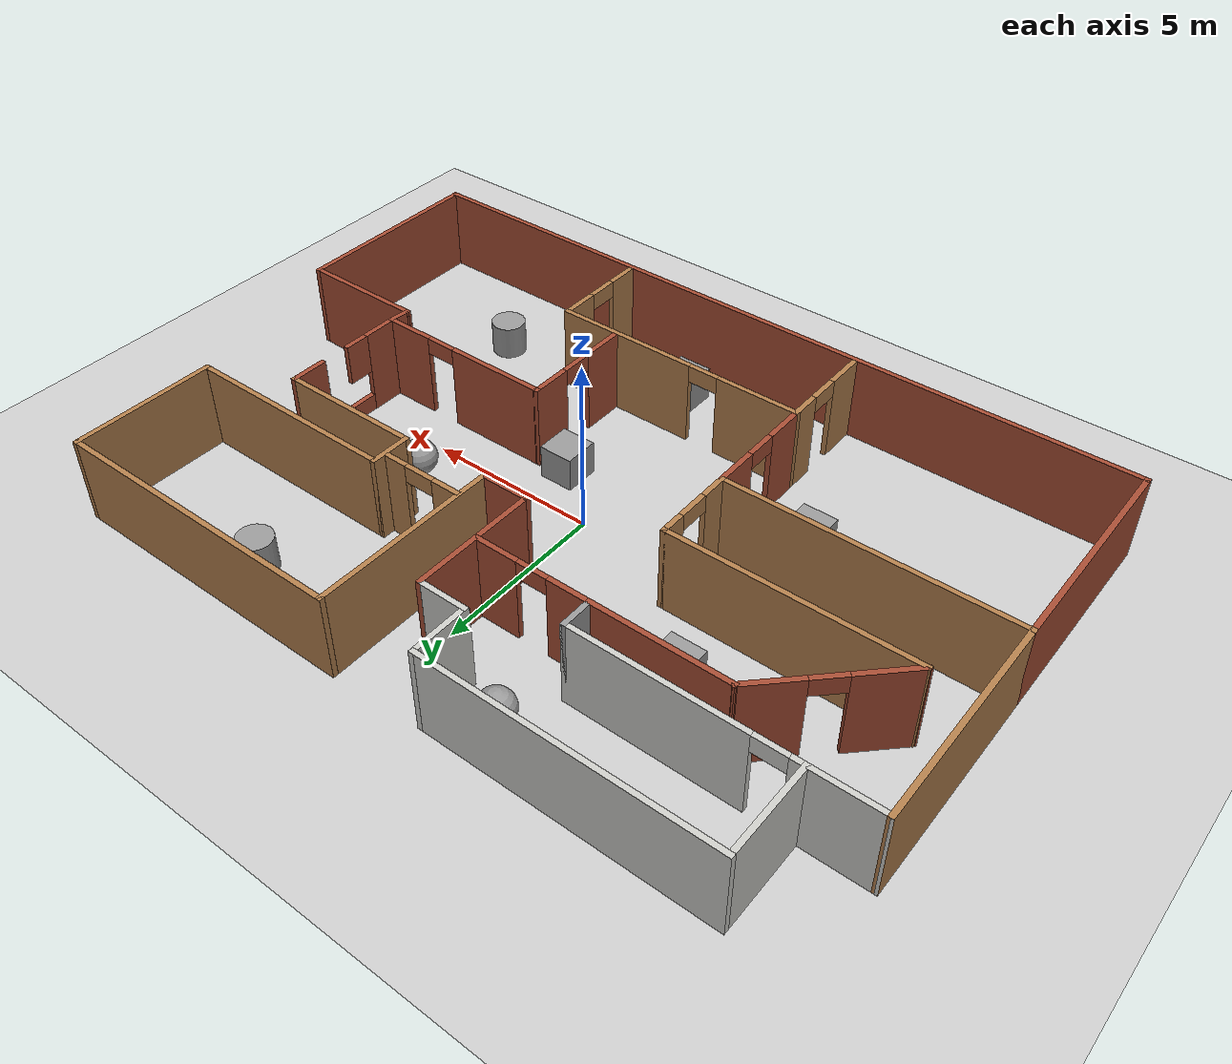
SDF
<sdf version="1.7">
 <world name="default">
  <model name="ground_plane">
   <static>1</static>
   <link name="link">
    <collision name="collision">
     <geometry><plane><normal>0 0 1</normal><size>100 100</size></plane></geometry>
     <surface><friction><ode><mu>100</mu><mu2>50</mu2></ode></friction></surface>
    </collision>
    <visual name="visual">
     <cast_shadows>0</cast_shadows>
     <geometry><plane><normal>0 0 1</normal><size>100 100</size></plane></geometry>
     <material>
      <script><uri>file://media/materials/scripts/gazebo.material</uri><name>Gazebo/Grey</name></script>
     </material>
    </visual>
   </link>
  </model>
  <gravity>0 0 -9.8</gravity>
  <magnetic_field>6e-06 2.3e-05 -4.2e-05</magnetic_field>
  <atmosphere type="adiabatic"/>
  <physics type="ode">
   <max_step_size>0.001</max_step_size>
   <real_time_factor>1</real_time_factor>
   <real_time_update_rate>1000</real_time_update_rate>
  </physics>
  <scene><ambient>0.4 0.4 0.4 1</ambient><background>0.7 0.7 0.7 1</background><shadows>1</shadows></scene>
  <audio><device>default</device></audio>
  <spherical_coordinates>
   <surface_model>EARTH_WGS84</surface_model>
   <latitude_deg>0</latitude_deg>
   <longitude_deg>0</longitude_deg>
   <elevation>0</elevation>
   <heading_deg>0</heading_deg>
  </spherical_coordinates>
  <model name="my_world">
   <pose>0.001955 -0.001512 0 0 -0 0</pose>
   <link name="Wall_0">
    <pose>5.19915 -1.20043 0 0 -0 0</pose>
    <visual name="Wall_0_Visual_0">
     <pose>-1.21752 0 1.25 0 -0 0</pose>
     <geometry><box><size>3.06495 0.15 2.5</size></box></geometry>
     <material>
      <script><uri>file://media/materials/scripts/gazebo.material</uri><name>Gazebo/Bricks</name></script>
      <ambient>1 1 1 1</ambient>
     </material>
     <meta><layer>0</layer></meta>
    </visual>
    <collision name="Wall_0_Collision_0">
     <geometry><box><size>3.06495 0.15 2.5</size></box></geometry>
     <pose>-1.21752 0 1.25 0 -0 0</pose>
    </collision>
    <visual name="Wall_0_Visual_1">
     <pose>1.98248 0 1.25 0 -0 0</pose>
     <geometry><box><size>1.53505 0.15 2.5</size></box></geometry>
     <material>
      <script><uri>file://media/materials/scripts/gazebo.material</uri><name>Gazebo/Bricks</name></script>
      <ambient>1 1 1 1</ambient>
     </material>
     <meta><layer>0</layer></meta>
    </visual>
    <collision name="Wall_0_Collision_1">
     <geometry><box><size>1.53505 0.15 2.5</size></box></geometry>
     <pose>1.98248 0 1.25 0 -0 0</pose>
    </collision>
    <visual name="Wall_0_Visual_2">
     <pose>0.764952 0 2.25 0 -0 0</pose>
     <geometry><box><size>0.9 0.15 0.5</size></box></geometry>
     <material>
      <script><uri>file://media/materials/scripts/gazebo.material</uri><name>Gazebo/Bricks</name></script>
      <ambient>1 1 1 1</ambient>
     </material>
     <meta><layer>0</layer></meta>
    </visual>
    <collision name="Wall_0_Collision_2">
     <geometry><box><size>0.9 0.15 0.5</size></box></geometry>
     <pose>0.764952 0 2.25 0 -0 0</pose>
    </collision>
   </link>
   <link name="Wall_1">
    <pose>7.87416 0.599569 0 0 -0 1.5708</pose>
    <visual name="Wall_1_Visual_0">
     <pose>-1.32441 0 1.25 0 -0 0</pose>
     <geometry><box><size>1.10117 0.15 2.5</size></box></geometry>
     <material>
      <script><uri>file://media/materials/scripts/gazebo.material</uri><name>Gazebo/Bricks</name></script>
      <ambient>1 1 1 1</ambient>
     </material>
     <meta><layer>0</layer></meta>
    </visual>
    <collision name="Wall_1_Collision_0">
     <geometry><box><size>1.10117 0.15 2.5</size></box></geometry>
     <pose>-1.32441 0 1.25 0 -0 0</pose>
    </collision>
    <visual name="Wall_1_Visual_1">
     <pose>0.550585 0 0.25 0 -0 0</pose>
     <geometry><box><size>2.64883 0.15 0.5</size></box></geometry>
     <material>
      <script><uri>file://media/materials/scripts/gazebo.material</uri><name>Gazebo/Bricks</name></script>
      <ambient>1 1 1 1</ambient>
     </material>
     <meta><layer>0</layer></meta>
    </visual>
    <collision name="Wall_1_Collision_1">
     <geometry><box><size>2.64883 0.15 0.5</size></box></geometry>
     <pose>0.550585 0 0.25 0 -0 0</pose>
    </collision>
    <visual name="Wall_1_Visual_2">
     <pose>1.32206 0 1.5 0 -0 0</pose>
     <geometry><box><size>1.10588 0.15 2</size></box></geometry>
     <material>
      <script><uri>file://media/materials/scripts/gazebo.material</uri><name>Gazebo/Bricks</name></script>
      <ambient>1 1 1 1</ambient>
     </material>
     <meta><layer>0</layer></meta>
    </visual>
    <collision name="Wall_1_Collision_2">
     <geometry><box><size>1.10588 0.15 2</size></box></geometry>
     <pose>1.32206 0 1.5 0 -0 0</pose>
    </collision>
    <visual name="Wall_1_Visual_3">
     <pose>-0.402355 0 1.9 0 -0 0</pose>
     <geometry><box><size>0.742949 0.15 1.2</size></box></geometry>
     <material>
      <script><uri>file://media/materials/scripts/gazebo.material</uri><name>Gazebo/Bricks</name></script>
      <ambient>1 1 1 1</ambient>
     </material>
     <meta><layer>0</layer></meta>
    </visual>
    <collision name="Wall_1_Collision_3">
     <geometry><box><size>0.742949 0.15 1.2</size></box></geometry>
     <pose>-0.402355 0 1.9 0 -0 0</pose>
    </collision>
   </link>
   <link name="Wall_10">
    <collision name="Wall_10_Collision">
     <geometry><box><size>1.5 0.15 2.5</size></box></geometry>
     <pose>0 0 1.25 0 -0 0</pose>
    </collision>
    <visual name="Wall_10_Visual">
     <pose>0 0 1.25 0 -0 0</pose>
     <geometry><box><size>1.5 0.15 2.5</size></box></geometry>
     <material>
      <script><uri>file://media/materials/scripts/gazebo.material</uri><name>Gazebo/CeilingTiled</name></script>
      <ambient>1 1 1 1</ambient>
     </material>
     <meta><layer>0</layer></meta>
    </visual>
    <pose>-0.750846 5.84957 0 0 -0 3.14159</pose>
   </link>
   <link name="Wall_11">
    <collision name="Wall_11_Collision">
     <geometry><box><size>1.75 0.15 2.5</size></box></geometry>
     <pose>0 0 1.25 0 -0 0</pose>
    </collision>
    <visual name="Wall_11_Visual">
     <pose>0 0 1.25 0 -0 0</pose>
     <geometry><box><size>1.75 0.15 2.5</size></box></geometry>
     <material>
      <script><uri>file://media/materials/scripts/gazebo.material</uri><name>Gazebo/CeilingTiled</name></script>
      <ambient>1 1 1 1</ambient>
     </material>
     <meta><layer>0</layer></meta>
    </visual>
    <pose>-1.42585 6.64957 0 0 -0 1.5708</pose>
   </link>
   <link name="Wall_12">
    <collision name="Wall_12_Collision">
     <geometry><box><size>8.25 0.15 2.5</size></box></geometry>
     <pose>0 0 1.25 0 -0 0</pose>
    </collision>
    <visual name="Wall_12_Visual">
     <pose>0 0 1.25 0 -0 0</pose>
     <geometry><box><size>8.25 0.15 2.5</size></box></geometry>
     <material>
      <script><uri>file://media/materials/scripts/gazebo.material</uri><name>Gazebo/CeilingTiled</name></script>
      <ambient>1 1 1 1</ambient>
     </material>
     <meta><layer>0</layer></meta>
    </visual>
    <pose>-5.47585 7.44957 0 0 -0 3.14159</pose>
   </link>
   <link name="Wall_13">
    <collision name="Wall_13_Collision">
     <geometry><box><size>2.75 0.15 2.5</size></box></geometry>
     <pose>0 0 1.25 0 -0 0</pose>
    </collision>
    <visual name="Wall_13_Visual">
     <pose>0 0 1.25 0 -0 0</pose>
     <geometry><box><size>2.75 0.15 2.5</size></box></geometry>
     <material>
      <script><uri>file://media/materials/scripts/gazebo.material</uri><name>Gazebo/CeilingTiled</name></script>
      <ambient>1 1 1 1</ambient>
     </material>
     <meta><layer>0</layer></meta>
    </visual>
    <pose>-9.52585 6.14957 0 0 -0 -1.5708</pose>
   </link>
   <link name="Wall_14">
    <pose>-6.47584 4.84957 0 0 -0 0</pose>
    <visual name="Wall_14_Visual_0">
     <pose>-2.90772 0 1.25 0 -0 0</pose>
     <geometry><box><size>0.434569 0.15 2.5</size></box></geometry>
     <material>
      <script><uri>file://media/materials/scripts/gazebo.material</uri><name>Gazebo/CeilingTiled</name></script>
      <ambient>1 1 1 1</ambient>
     </material>
     <meta><layer>0</layer></meta>
    </visual>
    <collision name="Wall_14_Collision_0">
     <geometry><box><size>0.434569 0.15 2.5</size></box></geometry>
     <pose>-2.90772 0 1.25 0 -0 0</pose>
    </collision>
    <visual name="Wall_14_Visual_1">
     <pose>0.667285 0 1.25 0 -0 0</pose>
     <geometry><box><size>4.91543 0.15 2.5</size></box></geometry>
     <material>
      <script><uri>file://media/materials/scripts/gazebo.material</uri><name>Gazebo/CeilingTiled</name></script>
      <ambient>1 1 1 1</ambient>
     </material>
     <meta><layer>0</layer></meta>
    </visual>
    <collision name="Wall_14_Collision_1">
     <geometry><box><size>4.91543 0.15 2.5</size></box></geometry>
     <pose>0.667285 0 1.25 0 -0 0</pose>
    </collision>
    <visual name="Wall_14_Visual_2">
     <pose>-2.24043 0 2.25 0 -0 0</pose>
     <geometry><box><size>0.9 0.15 0.5</size></box></geometry>
     <material>
      <script><uri>file://media/materials/scripts/gazebo.material</uri><name>Gazebo/CeilingTiled</name></script>
      <ambient>1 1 1 1</ambient>
     </material>
     <meta><layer>0</layer></meta>
    </visual>
    <collision name="Wall_14_Collision_2">
     <geometry><box><size>0.9 0.15 0.5</size></box></geometry>
     <pose>-2.24043 0 2.25 0 -0 0</pose>
    </collision>
   </link>
   <link name="Wall_15">
    <collision name="Wall_15_Collision">
     <geometry><box><size>1 0.15 2.5</size></box></geometry>
     <pose>0 0 1.25 0 -0 0</pose>
    </collision>
    <visual name="Wall_15_Visual">
     <pose>0 0 1.25 0 -0 0</pose>
     <geometry><box><size>1 0.15 2.5</size></box></geometry>
     <material>
      <script><uri>file://media/materials/scripts/gazebo.material</uri><name>Gazebo/Grey</name></script>
      <ambient>1 1 1 1</ambient>
     </material>
     <meta><layer>0</layer></meta>
    </visual>
    <pose>-3.42585 4.42457 0 0 -0 -1.5708</pose>
   </link>
   <link name="Wall_16">
    <collision name="Wall_16_Collision">
     <geometry><box><size>4 0.15 2.5</size></box></geometry>
     <pose>0 0 1.25 0 -0 0</pose>
    </collision>
    <visual name="Wall_16_Visual">
     <pose>0 0 1.25 0 -0 0</pose>
     <geometry><box><size>4 0.15 2.5</size></box></geometry>
     <material>
      <script><uri>file://media/materials/scripts/gazebo.material</uri><name>Gazebo/Bricks</name></script>
      <ambient>1 1 1 1</ambient>
     </material>
     <meta><layer>0</layer></meta>
    </visual>
    <pose>-5.35085 3.99957 0 0 -0 3.14159</pose>
   </link>
   <link name="Wall_17">
    <pose>-8.72541 2.55 0 0 -0 -2.35619</pose>
    <visual name="Wall_17_Visual_0">
     <pose>-1.31893 0 1.25 0 -0 0</pose>
     <geometry><box><size>1.61213 0.15 2.5</size></box></geometry>
     <material>
      <script><uri>file://media/materials/scripts/gazebo.material</uri><name>Gazebo/Bricks</name></script>
      <ambient>1 1 1 1</ambient>
     </material>
     <meta><layer>0</layer></meta>
    </visual>
    <collision name="Wall_17_Collision_0">
     <geometry><box><size>1.61213 0.15 2.5</size></box></geometry>
     <pose>-1.31893 0 1.25 0 -0 0</pose>
    </collision>
    <visual name="Wall_17_Visual_1">
     <pose>1.25606 0 1.25 0 -0 0</pose>
     <geometry><box><size>1.73787 0.15 2.5</size></box></geometry>
     <material>
      <script><uri>file://media/materials/scripts/gazebo.material</uri><name>Gazebo/Bricks</name></script>
      <ambient>1 1 1 1</ambient>
     </material>
     <meta><layer>0</layer></meta>
    </visual>
    <collision name="Wall_17_Collision_1">
     <geometry><box><size>1.73787 0.15 2.5</size></box></geometry>
     <pose>1.25606 0 1.25 0 -0 0</pose>
    </collision>
    <visual name="Wall_17_Visual_2">
     <pose>-0.06287 0 2.25 0 -0 0</pose>
     <geometry><box><size>0.9 0.15 0.5</size></box></geometry>
     <material>
      <script><uri>file://media/materials/scripts/gazebo.material</uri><name>Gazebo/Bricks</name></script>
      <ambient>1 1 1 1</ambient>
     </material>
     <meta><layer>0</layer></meta>
    </visual>
    <collision name="Wall_17_Collision_2">
     <geometry><box><size>0.9 0.15 0.5</size></box></geometry>
     <pose>-0.06287 0 2.25 0 -0 0</pose>
    </collision>
   </link>
   <link name="Wall_18">
    <collision name="Wall_18_Collision">
     <geometry><box><size>7 0.15 2.5</size></box></geometry>
     <pose>0 0 1.25 0 -0 0</pose>
    </collision>
    <visual name="Wall_18_Visual">
     <pose>0 0 1.25 0 -0 0</pose>
     <geometry><box><size>7 0.15 2.5</size></box></geometry>
     <material>
      <script><uri>file://media/materials/scripts/gazebo.material</uri><name>Gazebo/Wood</name></script>
      <ambient>1 1 1 1</ambient>
     </material>
     <meta><layer>0</layer></meta>
    </visual>
    <pose>-6.74998 1.10043 0 0 -0 0</pose>
   </link>
   <link name="Wall_19">
    <pose>-3.32498 -0.074569 0 0 -0 -1.5708</pose>
    <visual name="Wall_19_Visual_0">
     <pose>-0.876329 0 1.25 0 -0 0</pose>
     <geometry><box><size>0.747341 0.15 2.5</size></box></geometry>
     <material>
      <script><uri>file://media/materials/scripts/gazebo.material</uri><name>Gazebo/Wood</name></script>
      <ambient>1 1 1 1</ambient>
     </material>
     <meta><layer>0</layer></meta>
    </visual>
    <collision name="Wall_19_Collision_0">
     <geometry><box><size>0.747341 0.15 2.5</size></box></geometry>
     <pose>-0.876329 0 1.25 0 -0 0</pose>
    </collision>
    <visual name="Wall_19_Visual_1">
     <pose>0.823671 0 1.25 0 -0 0</pose>
     <geometry><box><size>0.852659 0.15 2.5</size></box></geometry>
     <material>
      <script><uri>file://media/materials/scripts/gazebo.material</uri><name>Gazebo/Wood</name></script>
      <ambient>1 1 1 1</ambient>
     </material>
     <meta><layer>0</layer></meta>
    </visual>
    <collision name="Wall_19_Collision_1">
     <geometry><box><size>0.852659 0.15 2.5</size></box></geometry>
     <pose>0.823671 0 1.25 0 -0 0</pose>
    </collision>
    <visual name="Wall_19_Visual_2">
     <pose>-0.052659 0 2.25 0 -0 0</pose>
     <geometry><box><size>0.9 0.15 0.5</size></box></geometry>
     <material>
      <script><uri>file://media/materials/scripts/gazebo.material</uri><name>Gazebo/Wood</name></script>
      <ambient>1 1 1 1</ambient>
     </material>
     <meta><layer>0</layer></meta>
    </visual>
    <collision name="Wall_19_Collision_2">
     <geometry><box><size>0.9 0.15 0.5</size></box></geometry>
     <pose>-0.052659 0 2.25 0 -0 0</pose>
    </collision>
   </link>
   <link name="Wall_2">
    <collision name="Wall_2_Collision">
     <geometry><box><size>4.25 0.15 2.5</size></box></geometry>
     <pose>0 0 1.25 0 -0 0</pose>
    </collision>
    <visual name="Wall_2_Visual">
     <pose>0 0 1.25 0 -0 0</pose>
     <geometry><box><size>4.25 0.15 2.5</size></box></geometry>
     <material>
      <script><uri>file://media/materials/scripts/gazebo.material</uri><name>Gazebo/Wood</name></script>
      <ambient>1 1 1 1</ambient>
     </material>
     <meta><layer>0</layer></meta>
    </visual>
    <pose>5.82415 2.39957 0 0 -0 3.14159</pose>
   </link>
   <link name="Wall_20">
    <collision name="Wall_20_Collision">
     <geometry><box><size>8.25 0.15 2.5</size></box></geometry>
     <pose>0 0 1.25 0 -0 0</pose>
    </collision>
    <visual name="Wall_20_Visual">
     <pose>0 0 1.25 0 -0 0</pose>
     <geometry><box><size>8.25 0.15 2.5</size></box></geometry>
     <material>
      <script><uri>file://media/materials/scripts/gazebo.material</uri><name>Gazebo/Wood</name></script>
      <ambient>1 1 1 1</ambient>
     </material>
     <meta><layer>0</layer></meta>
    </visual>
    <pose>-7.37498 -1.24957 0 0 -0 3.14159</pose>
   </link>
   <link name="Wall_21">
    <collision name="Wall_21_Collision">
     <geometry><box><size>6.5 0.15 2.5</size></box></geometry>
     <pose>0 0 1.25 0 -0 0</pose>
    </collision>
    <visual name="Wall_21_Visual">
     <pose>0 0 1.25 0 -0 0</pose>
     <geometry><box><size>6.5 0.15 2.5</size></box></geometry>
     <material>
      <script><uri>file://media/materials/scripts/gazebo.material</uri><name>Gazebo/Bricks</name></script>
      <ambient>1 1 1 1</ambient>
     </material>
     <meta><layer>0</layer></meta>
    </visual>
    <pose>-11.425 -4.42457 0 0 -0 -1.5708</pose>
   </link>
   <link name="Wall_22">
    <collision name="Wall_22_Collision">
     <geometry><box><size>23 0.15 2.5</size></box></geometry>
     <pose>0 0 1.25 0 -0 0</pose>
    </collision>
    <visual name="Wall_22_Visual">
     <pose>0 0 1.25 0 -0 0</pose>
     <geometry><box><size>23 0.15 2.5</size></box></geometry>
     <material>
      <script><uri>file://media/materials/scripts/gazebo.material</uri><name>Gazebo/Bricks</name></script>
      <ambient>1 1 1 1</ambient>
     </material>
     <meta><layer>0</layer></meta>
    </visual>
    <pose>1.7e-05 -7.59957 0 0 -0 0</pose>
   </link>
   <link name="Wall_23">
    <collision name="Wall_23_Collision">
     <geometry><box><size>6 0.15 2.5</size></box></geometry>
     <pose>0 0 1.25 0 -0 0</pose>
    </collision>
    <visual name="Wall_23_Visual">
     <pose>0 0 1.25 0 -0 0</pose>
     <geometry><box><size>6 0.15 2.5</size></box></geometry>
     <material>
      <script><uri>file://media/materials/scripts/gazebo.material</uri><name>Gazebo/Bricks</name></script>
      <ambient>1 1 1 1</ambient>
     </material>
     <meta><layer>0</layer></meta>
    </visual>
    <pose>11.425 -4.67457 0 0 -0 1.5708</pose>
   </link>
   <link name="Wall_24">
    <collision name="Wall_24_Collision">
     <geometry><box><size>3.75 0.15 2.5</size></box></geometry>
     <pose>0 0 1.25 0 -0 0</pose>
    </collision>
    <visual name="Wall_24_Visual">
     <pose>0 0 1.25 0 -0 0</pose>
     <geometry><box><size>3.75 0.15 2.5</size></box></geometry>
     <material>
      <script><uri>file://media/materials/scripts/gazebo.material</uri><name>Gazebo/Bricks</name></script>
      <ambient>1 1 1 1</ambient>
     </material>
     <meta><layer>0</layer></meta>
    </visual>
    <pose>9.62502 -1.74957 0 0 -0 3.14159</pose>
   </link>
   <link name="Wall_25">
    <collision name="Wall_25_Collision">
     <geometry><box><size>0.701332 0.15 2.5</size></box></geometry>
     <pose>0 0 1.25 0 -0 0</pose>
    </collision>
    <visual name="Wall_25_Visual">
     <pose>0 0 1.25 0 -0 0</pose>
     <geometry><box><size>0.701332 0.15 2.5</size></box></geometry>
     <material>
      <script><uri>file://media/materials/scripts/gazebo.material</uri><name>Gazebo/Bricks</name></script>
      <ambient>1 1 1 1</ambient>
     </material>
     <meta><layer>0</layer></meta>
    </visual>
    <pose>7.84959 -1.475 0 0 -0 1.48155</pose>
   </link>
   <link name="Wall_27">
    <pose>-3.32498 -2.92457 0 0 -0 -1.5708</pose>
    <visual name="Wall_27_Visual_0">
     <pose>-1.09875 0 1.25 0 -0 0</pose>
     <geometry><box><size>1.30251 0.15 2.5</size></box></geometry>
     <material>
      <script><uri>file://media/materials/scripts/gazebo.material</uri><name>Gazebo/Bricks</name></script>
      <ambient>1 1 1 1</ambient>
     </material>
     <meta><layer>0</layer></meta>
    </visual>
    <collision name="Wall_27_Collision_0">
     <geometry><box><size>1.30251 0.15 2.5</size></box></geometry>
     <pose>-1.09875 0 1.25 0 -0 0</pose>
    </collision>
    <visual name="Wall_27_Visual_1">
     <pose>1.10125 0 1.25 0 -0 0</pose>
     <geometry><box><size>1.29749 0.15 2.5</size></box></geometry>
     <material>
      <script><uri>file://media/materials/scripts/gazebo.material</uri><name>Gazebo/Bricks</name></script>
      <ambient>1 1 1 1</ambient>
     </material>
     <meta><layer>0</layer></meta>
    </visual>
    <collision name="Wall_27_Collision_1">
     <geometry><box><size>1.29749 0.15 2.5</size></box></geometry>
     <pose>1.10125 0 1.25 0 -0 0</pose>
    </collision>
    <visual name="Wall_27_Visual_2">
     <pose>0.002507 0 2.25 0 -0 0</pose>
     <geometry><box><size>0.9 0.15 0.5</size></box></geometry>
     <material>
      <script><uri>file://media/materials/scripts/gazebo.material</uri><name>Gazebo/Bricks</name></script>
      <ambient>1 1 1 1</ambient>
     </material>
     <meta><layer>0</layer></meta>
    </visual>
    <collision name="Wall_27_Collision_2">
     <geometry><box><size>0.9 0.15 0.5</size></box></geometry>
     <pose>0.002507 0 2.25 0 -0 0</pose>
    </collision>
   </link>
   <link name="Wall_28">
    <pose>0.475017 -4.59957 0 0 -0 0</pose>
    <visual name="Wall_28_Visual_0">
     <pose>-2.61508 0 1.25 0 -0 0</pose>
     <geometry><box><size>2.51985 0.15 2.5</size></box></geometry>
     <material>
      <script><uri>file://media/materials/scripts/gazebo.material</uri><name>Gazebo/Wood</name></script>
      <ambient>1 1 1 1</ambient>
     </material>
     <meta><layer>0</layer></meta>
    </visual>
    <collision name="Wall_28_Collision_0">
     <geometry><box><size>2.51985 0.15 2.5</size></box></geometry>
     <pose>-2.61508 0 1.25 0 -0 0</pose>
    </collision>
    <visual name="Wall_28_Visual_1">
     <pose>1.70992 0 1.25 0 -0 0</pose>
     <geometry><box><size>4.33015 0.15 2.5</size></box></geometry>
     <material>
      <script><uri>file://media/materials/scripts/gazebo.material</uri><name>Gazebo/Wood</name></script>
      <ambient>1 1 1 1</ambient>
     </material>
     <meta><layer>0</layer></meta>
    </visual>
    <collision name="Wall_28_Collision_1">
     <geometry><box><size>4.33015 0.15 2.5</size></box></geometry>
     <pose>1.70992 0 1.25 0 -0 0</pose>
    </collision>
    <visual name="Wall_28_Visual_2">
     <pose>-0.905153 0 2.25 0 -0 0</pose>
     <geometry><box><size>0.9 0.15 0.5</size></box></geometry>
     <material>
      <script><uri>file://media/materials/scripts/gazebo.material</uri><name>Gazebo/Wood</name></script>
      <ambient>1 1 1 1</ambient>
     </material>
     <meta><layer>0</layer></meta>
    </visual>
    <collision name="Wall_28_Collision_2">
     <geometry><box><size>0.9 0.15 0.5</size></box></geometry>
     <pose>-0.905153 0 2.25 0 -0 0</pose>
    </collision>
   </link>
   <link name="Wall_29">
    <pose>4.27502 -6.02457 0 0 -0 -1.5708</pose>
    <visual name="Wall_29_Visual_0">
     <pose>-0.921624 0 1.25 0 -0 0</pose>
     <geometry><box><size>1.15675 0.15 2.5</size></box></geometry>
     <material>
      <script><uri>file://media/materials/scripts/gazebo.material</uri><name>Gazebo/Wood</name></script>
      <ambient>1 1 1 1</ambient>
     </material>
     <meta><layer>0</layer></meta>
    </visual>
    <collision name="Wall_29_Collision_0">
     <geometry><box><size>1.15675 0.15 2.5</size></box></geometry>
     <pose>-0.921624 0 1.25 0 -0 0</pose>
    </collision>
    <visual name="Wall_29_Visual_1">
     <pose>1.02838 0 1.25 0 -0 0</pose>
     <geometry><box><size>0.943247 0.15 2.5</size></box></geometry>
     <material>
      <script><uri>file://media/materials/scripts/gazebo.material</uri><name>Gazebo/Wood</name></script>
      <ambient>1 1 1 1</ambient>
     </material>
     <meta><layer>0</layer></meta>
    </visual>
    <collision name="Wall_29_Collision_1">
     <geometry><box><size>0.943247 0.15 2.5</size></box></geometry>
     <pose>1.02838 0 1.25 0 -0 0</pose>
    </collision>
    <visual name="Wall_29_Visual_2">
     <pose>0.106753 0 2.25 0 -0 0</pose>
     <geometry><box><size>0.9 0.15 0.5</size></box></geometry>
     <material>
      <script><uri>file://media/materials/scripts/gazebo.material</uri><name>Gazebo/Wood</name></script>
      <ambient>1 1 1 1</ambient>
     </material>
     <meta><layer>0</layer></meta>
    </visual>
    <collision name="Wall_29_Collision_2">
     <geometry><box><size>0.9 0.15 0.5</size></box></geometry>
     <pose>0.106753 0 2.25 0 -0 0</pose>
    </collision>
   </link>
   <link name="Wall_3">
    <collision name="Wall_3_Collision">
     <geometry><box><size>1.25 0.15 2.5</size></box></geometry>
     <pose>0 0 1.25 0 -0 0</pose>
    </collision>
    <visual name="Wall_3_Visual">
     <pose>0 0 1.25 0 -0 0</pose>
     <geometry><box><size>1.25 0.15 2.5</size></box></geometry>
     <material>
      <script><uri>file://media/materials/scripts/gazebo.material</uri><name>Gazebo/Wood</name></script>
      <ambient>1 1 1 1</ambient>
     </material>
     <meta><layer>0</layer></meta>
    </visual>
    <pose>3.77415 2.94957 0 0 -0 1.5708</pose>
   </link>
   <link name="Wall_31">
    <pose>-3.32498 -6.02457 0 0 -0 -1.5708</pose>
    <visual name="Wall_31_Visual_0">
     <pose>-1.03831 0 1.25 0 -0 0</pose>
     <geometry><box><size>0.923382 0.15 2.5</size></box></geometry>
     <material>
      <script><uri>file://media/materials/scripts/gazebo.material</uri><name>Gazebo/Wood</name></script>
      <ambient>1 1 1 1</ambient>
     </material>
     <meta><layer>0</layer></meta>
    </visual>
    <collision name="Wall_31_Collision_0">
     <geometry><box><size>0.923382 0.15 2.5</size></box></geometry>
     <pose>-1.03831 0 1.25 0 -0 0</pose>
    </collision>
    <visual name="Wall_31_Visual_1">
     <pose>0.911691 0 1.25 0 -0 0</pose>
     <geometry><box><size>1.17662 0.15 2.5</size></box></geometry>
     <material>
      <script><uri>file://media/materials/scripts/gazebo.material</uri><name>Gazebo/Wood</name></script>
      <ambient>1 1 1 1</ambient>
     </material>
     <meta><layer>0</layer></meta>
    </visual>
    <collision name="Wall_31_Collision_1">
     <geometry><box><size>1.17662 0.15 2.5</size></box></geometry>
     <pose>0.911691 0 1.25 0 -0 0</pose>
    </collision>
    <visual name="Wall_31_Visual_2">
     <pose>-0.126618 0 2.25 0 -0 0</pose>
     <geometry><box><size>0.9 0.15 0.5</size></box></geometry>
     <material>
      <script><uri>file://media/materials/scripts/gazebo.material</uri><name>Gazebo/Wood</name></script>
      <ambient>1 1 1 1</ambient>
     </material>
     <meta><layer>0</layer></meta>
    </visual>
    <collision name="Wall_31_Collision_2">
     <geometry><box><size>0.9 0.15 0.5</size></box></geometry>
     <pose>-0.126618 0 2.25 0 -0 0</pose>
    </collision>
   </link>
   <link name="Wall_33">
    <pose>2.52177 3.13342 0 0 -0 0</pose>
    <visual name="Wall_33_Visual_0">
     <pose>-0.822221 0 1.25 0 -0 0</pose>
     <geometry><box><size>0.855557 0.15 2.5</size></box></geometry>
     <material>
      <script><uri>file://media/materials/scripts/gazebo.material</uri><name>Gazebo/Wood</name></script>
      <ambient>1 1 1 1</ambient>
     </material>
     <meta><layer>0</layer></meta>
    </visual>
    <collision name="Wall_33_Collision_0">
     <geometry><box><size>0.855557 0.15 2.5</size></box></geometry>
     <pose>-0.822221 0 1.25 0 -0 0</pose>
    </collision>
    <visual name="Wall_33_Visual_1">
     <pose>0.877779 0 1.25 0 -0 0</pose>
     <geometry><box><size>0.744443 0.15 2.5</size></box></geometry>
     <material>
      <script><uri>file://media/materials/scripts/gazebo.material</uri><name>Gazebo/Wood</name></script>
      <ambient>1 1 1 1</ambient>
     </material>
     <meta><layer>0</layer></meta>
    </visual>
    <collision name="Wall_33_Collision_1">
     <geometry><box><size>0.744443 0.15 2.5</size></box></geometry>
     <pose>0.877779 0 1.25 0 -0 0</pose>
    </collision>
    <visual name="Wall_33_Visual_2">
     <pose>0.055557 0 2.25 0 -0 0</pose>
     <geometry><box><size>0.9 0.15 0.5</size></box></geometry>
     <material>
      <script><uri>file://media/materials/scripts/gazebo.material</uri><name>Gazebo/Wood</name></script>
      <ambient>1 1 1 1</ambient>
     </material>
     <meta><layer>0</layer></meta>
    </visual>
    <collision name="Wall_33_Collision_2">
     <geometry><box><size>0.9 0.15 0.5</size></box></geometry>
     <pose>0.055557 0 2.25 0 -0 0</pose>
    </collision>
   </link>
   <link name="Wall_35">
    <collision name="Wall_35_Collision">
     <geometry><box><size>6.25 0.15 2.5</size></box></geometry>
     <pose>0 0 1.25 0 -0 0</pose>
    </collision>
    <visual name="Wall_35_Visual">
     <pose>0 0 1.25 0 -0 0</pose>
     <geometry><box><size>6.25 0.15 2.5</size></box></geometry>
     <material>
      <script><uri>file://media/materials/scripts/gazebo.material</uri><name>Gazebo/Wood</name></script>
      <ambient>1 1 1 1</ambient>
     </material>
     <meta><layer>0</layer></meta>
    </visual>
    <pose>-11.425 1.80043 0 0 -0 1.5708</pose>
   </link>
   <link name="Wall_36">
    <collision name="Wall_36_Collision">
     <geometry><box><size>2.04914 0.15 2.5</size></box></geometry>
     <pose>0 0 1.25 0 -0 0</pose>
    </collision>
    <visual name="Wall_36_Visual">
     <pose>0 0 1.25 0 -0 0</pose>
     <geometry><box><size>2.04914 0.15 2.5</size></box></geometry>
     <material>
      <script><uri>file://media/materials/scripts/gazebo.material</uri><name>Gazebo/CeilingTiled</name></script>
      <ambient>1 1 1 1</ambient>
     </material>
     <meta><layer>0</layer></meta>
    </visual>
    <pose>-10.4754 4.85 0 0 -0 -0.000454</pose>
   </link>
   <link name="Wall_38">
    <pose>-1.75085 3.99957 0 0 -0 0</pose>
    <visual name="Wall_38_Visual_0">
     <pose>-1.11647 0 1.25 0 -0 0</pose>
     <geometry><box><size>1.26705 0.15 2.5</size></box></geometry>
     <material>
      <script><uri>file://media/materials/scripts/gazebo.material</uri><name>Gazebo/Bricks</name></script>
      <ambient>1 1 1 1</ambient>
     </material>
     <meta><layer>0</layer></meta>
    </visual>
    <collision name="Wall_38_Collision_0">
     <geometry><box><size>1.26705 0.15 2.5</size></box></geometry>
     <pose>-1.11647 0 1.25 0 -0 0</pose>
    </collision>
    <visual name="Wall_38_Visual_1">
     <pose>1.08353 0 1.25 0 -0 0</pose>
     <geometry><box><size>1.33295 0.15 2.5</size></box></geometry>
     <material>
      <script><uri>file://media/materials/scripts/gazebo.material</uri><name>Gazebo/Bricks</name></script>
      <ambient>1 1 1 1</ambient>
     </material>
     <meta><layer>0</layer></meta>
    </visual>
    <collision name="Wall_38_Collision_1">
     <geometry><box><size>1.33295 0.15 2.5</size></box></geometry>
     <pose>1.08353 0 1.25 0 -0 0</pose>
    </collision>
    <visual name="Wall_38_Visual_2">
     <pose>-0.032946 0 2.25 0 -0 0</pose>
     <geometry><box><size>0.9 0.15 0.5</size></box></geometry>
     <material>
      <script><uri>file://media/materials/scripts/gazebo.material</uri><name>Gazebo/Bricks</name></script>
      <ambient>1 1 1 1</ambient>
     </material>
     <meta><layer>0</layer></meta>
    </visual>
    <collision name="Wall_38_Collision_2">
     <geometry><box><size>0.9 0.15 0.5</size></box></geometry>
     <pose>-0.032946 0 2.25 0 -0 0</pose>
    </collision>
   </link>
   <link name="Wall_4">
    <collision name="Wall_4_Collision">
     <geometry><box><size>6.5 0.15 2.5</size></box></geometry>
     <pose>0 0 1.25 0 -0 0</pose>
    </collision>
    <visual name="Wall_4_Visual">
     <pose>0 0 1.25 0 -0 0</pose>
     <geometry><box><size>6.5 0.15 2.5</size></box></geometry>
     <material>
      <script><uri>file://media/materials/scripts/gazebo.material</uri><name>Gazebo/Wood</name></script>
      <ambient>1 1 1 1</ambient>
     </material>
     <meta><layer>0</layer></meta>
    </visual>
    <pose>6.94915 3.49957 0 0 -0 0</pose>
   </link>
   <link name="Wall_40">
    <pose>2.52415 -2.87543 0 0 -0 1.5708</pose>
    <visual name="Wall_40_Visual_0">
     <pose>-1.06009 0 1.25 0 -0 0</pose>
     <geometry><box><size>1.37982 0.15 2.5</size></box></geometry>
     <material>
      <script><uri>file://media/materials/scripts/gazebo.material</uri><name>Gazebo/Bricks</name></script>
      <ambient>1 1 1 1</ambient>
     </material>
     <meta><layer>0</layer></meta>
    </visual>
    <collision name="Wall_40_Collision_0">
     <geometry><box><size>1.37982 0.15 2.5</size></box></geometry>
     <pose>-1.06009 0 1.25 0 -0 0</pose>
    </collision>
    <visual name="Wall_40_Visual_1">
     <pose>1.13991 0 1.25 0 -0 0</pose>
     <geometry><box><size>1.22018 0.15 2.5</size></box></geometry>
     <material>
      <script><uri>file://media/materials/scripts/gazebo.material</uri><name>Gazebo/Bricks</name></script>
      <ambient>1 1 1 1</ambient>
     </material>
     <meta><layer>0</layer></meta>
    </visual>
    <collision name="Wall_40_Collision_1">
     <geometry><box><size>1.22018 0.15 2.5</size></box></geometry>
     <pose>1.13991 0 1.25 0 -0 0</pose>
    </collision>
    <visual name="Wall_40_Visual_2">
     <pose>0.079824 0 2.25 0 -0 0</pose>
     <geometry><box><size>0.9 0.15 0.5</size></box></geometry>
     <material>
      <script><uri>file://media/materials/scripts/gazebo.material</uri><name>Gazebo/Bricks</name></script>
      <ambient>1 1 1 1</ambient>
     </material>
     <meta><layer>0</layer></meta>
    </visual>
    <collision name="Wall_40_Collision_2">
     <geometry><box><size>0.9 0.15 0.5</size></box></geometry>
     <pose>0.079824 0 2.25 0 -0 0</pose>
    </collision>
   </link>
   <link name="Wall_5">
    <collision name="Wall_5_Collision">
     <geometry><box><size>4.25 0.15 2.5</size></box></geometry>
     <pose>0 0 1.25 0 -0 0</pose>
    </collision>
    <visual name="Wall_5_Visual">
     <pose>0 0 1.25 0 -0 0</pose>
     <geometry><box><size>4.25 0.15 2.5</size></box></geometry>
     <material>
      <script><uri>file://media/materials/scripts/gazebo.material</uri><name>Gazebo/Wood</name></script>
      <ambient>1 1 1 1</ambient>
     </material>
     <meta><layer>0</layer></meta>
    </visual>
    <pose>10.1242 5.54957 0 0 -0 1.5708</pose>
   </link>
   <link name="Wall_6">
    <collision name="Wall_6_Collision">
     <geometry><box><size>9 0.15 2.5</size></box></geometry>
     <pose>0 0 1.25 0 -0 0</pose>
    </collision>
    <visual name="Wall_6_Visual">
     <pose>0 0 1.25 0 -0 0</pose>
     <geometry><box><size>9 0.15 2.5</size></box></geometry>
     <material>
      <script><uri>file://media/materials/scripts/gazebo.material</uri><name>Gazebo/Wood</name></script>
      <ambient>1 1 1 1</ambient>
     </material>
     <meta><layer>0</layer></meta>
    </visual>
    <pose>5.69915 7.59957 0 0 -0 3.14159</pose>
   </link>
   <link name="Wall_7">
    <collision name="Wall_7_Collision">
     <geometry><box><size>5.5 0.15 2.5</size></box></geometry>
     <pose>0 0 1.25 0 -0 0</pose>
    </collision>
    <visual name="Wall_7_Visual">
     <pose>0 0 1.25 0 -0 0</pose>
     <geometry><box><size>5.5 0.15 2.5</size></box></geometry>
     <material>
      <script><uri>file://media/materials/scripts/gazebo.material</uri><name>Gazebo/Wood</name></script>
      <ambient>1 1 1 1</ambient>
     </material>
     <meta><layer>0</layer></meta>
    </visual>
    <pose>1.27415 4.92457 0 0 -0 -1.5708</pose>
   </link>
   <link name="Wall_8">
    <collision name="Wall_8_Collision">
     <geometry><box><size>1.5 0.15 2.5</size></box></geometry>
     <pose>0 0 1.25 0 -0 0</pose>
    </collision>
    <visual name="Wall_8_Visual">
     <pose>0 0 1.25 0 -0 0</pose>
     <geometry><box><size>1.5 0.15 2.5</size></box></geometry>
     <material>
      <script><uri>file://media/materials/scripts/gazebo.material</uri><name>Gazebo/Bricks</name></script>
      <ambient>1 1 1 1</ambient>
     </material>
     <meta><layer>0</layer></meta>
    </visual>
    <pose>0.599154 2.24957 0 0 -0 3.14159</pose>
   </link>
   <link name="Wall_9">
    <collision name="Wall_9_Collision">
     <geometry><box><size>3.75 0.15 2.5</size></box></geometry>
     <pose>0 0 1.25 0 -0 0</pose>
    </collision>
    <visual name="Wall_9_Visual">
     <pose>0 0 1.25 0 -0 0</pose>
     <geometry><box><size>3.75 0.15 2.5</size></box></geometry>
     <material>
      <script><uri>file://media/materials/scripts/gazebo.material</uri><name>Gazebo/Bricks</name></script>
      <ambient>1 1 1 1</ambient>
     </material>
     <meta><layer>0</layer></meta>
    </visual>
    <pose>-0.075846 4.04957 0 0 -0 1.5708</pose>
   </link>
   <static>1</static>
  </model>
  <light name="sun" type="directional">
   <pose>0.072666 -0.079541 10 0 -0 0</pose>
   <diffuse>0.8 0.8 0.8 1</diffuse>
   <specular>0.2 0.2 0.2 1</specular>
   <attenuation>
    <range>1000</range>
    <constant>0.9</constant>
    <linear>0.01</linear>
    <quadratic>0.001</quadratic>
   </attenuation>
   <direction>-0.5 0.1 -0.9</direction>
  </light>
  <model name="unit_box">
   <pose>1.16109 -6.0446 0.499995 -1e-05 -0 -0</pose>
   <link name="link">
    <inertial>
     <mass>1</mass>
     <inertia>
      <ixx>0.166667</ixx>
      <ixy>0</ixy>
      <ixz>0</ixz>
      <iyy>0.166667</iyy>
      <iyz>0</iyz>
      <izz>0.166667</izz>
     </inertia>
    </inertial>
    <collision name="collision"><geometry><box><size>1 1 1</size></box></geometry></collision>
    <visual name="visual">
     <geometry><box><size>1 1 1</size></box></geometry>
     <material>
      <script><name>Gazebo/Grey</name><uri>file://media/materials/scripts/gazebo.material</uri></script>
     </material>
    </visual>
   </link>
  </model>
  <model name="unit_box_0">
   <pose>-5.06022 -2.74391 0.499995 0 1e-05 0</pose>
   <link name="link">
    <inertial>
     <mass>1</mass>
     <inertia>
      <ixx>0.166667</ixx>
      <ixy>0</ixy>
      <ixz>0</ixz>
      <iyy>0.166667</iyy>
      <iyz>0</iyz>
      <izz>0.166667</izz>
     </inertia>
    </inertial>
    <collision name="collision"><geometry><box><size>1 1 1</size></box></geometry></collision>
    <visual name="visual">
     <geometry><box><size>1 1 1</size></box></geometry>
     <material>
      <script><name>Gazebo/Grey</name><uri>file://media/materials/scripts/gazebo.material</uri></script>
     </material>
    </visual>
   </link>
  </model>
  <model name="unit_sphere">
   <pose>4.8546 1.03724 0.5 0 -0 0</pose>
   <link name="link">
    <inertial>
     <mass>1</mass>
     <inertia><ixx>0.1</ixx><ixy>0</ixy><ixz>0</ixz><iyy>0.1</iyy><iyz>0</iyz><izz>0.1</izz></inertia>
    </inertial>
    <collision name="collision"><geometry><sphere><radius>0.5</radius></sphere></geometry></collision>
    <visual name="visual">
     <geometry><sphere><radius>0.5</radius></sphere></geometry>
     <material>
      <script><name>Gazebo/Grey</name><uri>file://media/materials/scripts/gazebo.material</uri></script>
     </material>
    </visual>
   </link>
  </model>
  <model name="unit_cylinder">
   <pose>6.8031 -4.82181 0.499992 -3e-06 -4e-06 -0</pose>
   <link name="link">
    <inertial>
     <mass>1</mass>
     <inertia><ixx>0.145833</ixx><ixy>0</ixy><ixz>0</ixz><iyy>0.145833</iyy><iyz>0</iyz><izz>0.125</izz></inertia>
    </inertial>
    <collision name="collision">
     <geometry><cylinder><radius>0.5</radius><length>1</length></cylinder></geometry>
    </collision>
    <visual name="visual">
     <geometry><cylinder><radius>0.5</radius><length>1</length></cylinder></geometry>
     <material>
      <script><name>Gazebo/Grey</name><uri>file://media/materials/scripts/gazebo.material</uri></script>
     </material>
    </visual>
   </link>
  </model>
  <model name="unit_box_1">
   <pose>-5.06646 2.92448 0.499995 -1e-05 -0 -0</pose>
   <link name="link">
    <inertial>
     <mass>1</mass>
     <inertia>
      <ixx>0.166667</ixx>
      <ixy>0</ixy>
      <ixz>0</ixz>
      <iyy>0.166667</iyy>
      <iyz>0</iyz>
      <izz>0.166667</izz>
     </inertia>
    </inertial>
    <collision name="collision"><geometry><box><size>1 1 1</size></box></geometry></collision>
    <visual name="visual">
     <geometry><box><size>1 1 1</size></box></geometry>
     <material>
      <script><name>Gazebo/Grey</name><uri>file://media/materials/scripts/gazebo.material</uri></script>
     </material>
    </visual>
   </link>
  </model>
  <model name="unit_sphere_0">
   <pose>-2.6194 6.29579 0.5 0 -0 0</pose>
   <link name="link">
    <inertial>
     <mass>1</mass>
     <inertia><ixx>0.1</ixx><ixy>0</ixy><ixz>0</ixz><iyy>0.1</iyy><iyz>0</iyz><izz>0.1</izz></inertia>
    </inertial>
    <collision name="collision"><geometry><sphere><radius>0.5</radius></sphere></geometry></collision>
    <visual name="visual">
     <geometry><sphere><radius>0.5</radius></sphere></geometry>
     <material>
      <script><name>Gazebo/Grey</name><uri>file://media/materials/scripts/gazebo.material</uri></script>
     </material>
    </visual>
   </link>
  </model>
  <model name="unit_cylinder_0">
   <pose>5.37143 6.25152 0.499993 -3e-06 -4e-06 -0</pose>
   <link name="link">
    <inertial>
     <mass>1</mass>
     <inertia><ixx>0.145833</ixx><ixy>0</ixy><ixz>0</ixz><iyy>0.145833</iyy><iyz>0</iyz><izz>0.125</izz></inertia>
    </inertial>
    <collision name="collision">
     <geometry><cylinder><radius>0.5</radius><length>1</length></cylinder></geometry>
    </collision>
    <visual name="visual">
     <geometry><cylinder><radius>0.5</radius><length>1</length></cylinder></geometry>
     <material>
      <script><name>Gazebo/Grey</name><uri>file://media/materials/scripts/gazebo.material</uri></script>
     </material>
    </visual>
   </link>
  </model>
  <model name="unit_box_2">
   <pose>1.65163 -1.34014 0.5 0 -0 0</pose>
   <link name="link">
    <inertial>
     <mass>1</mass>
     <inertia>
      <ixx>0.166667</ixx>
      <ixy>0</ixy>
      <ixz>0</ixz>
      <iyy>0.166667</iyy>
      <iyz>0</iyz>
      <izz>0.166667</izz>
     </inertia>
    </inertial>
    <collision name="collision"><geometry><box><size>1 1 1</size></box></geometry></collision>
    <visual name="visual">
     <geometry><box><size>1 1 1</size></box></geometry>
     <material>
      <script><name>Gazebo/Grey</name><uri>file://media/materials/scripts/gazebo.material</uri></script>
     </material>
    </visual>
   </link>
  </model>
 </world>
</sdf>
